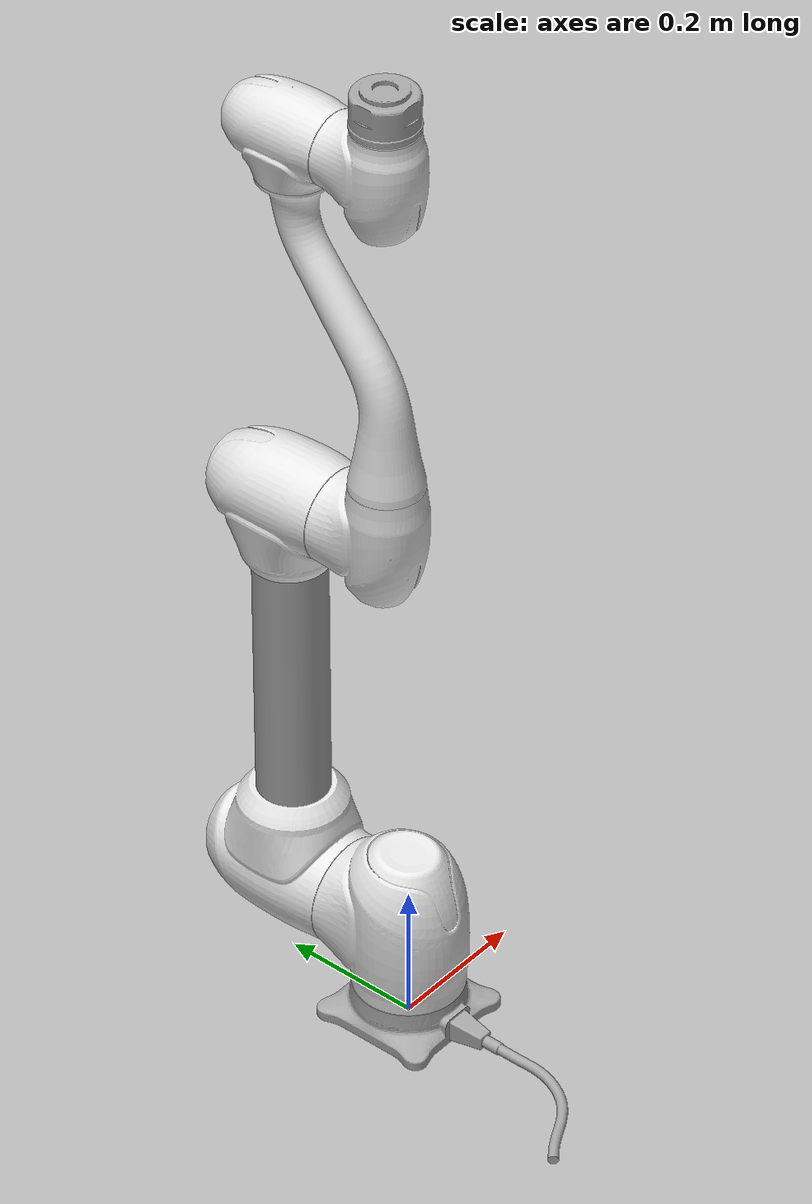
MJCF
<mujoco model="m1013">

  <asset>
    <mesh name="MF1013_0_0" file="m1013/assets/MF1013_0_0.stl" scale="0.001 0.001 0.001"/>
    <mesh name="MF1013_1_0" file="m1013/assets/MF1013_1_0.stl" scale="0.001 0.001 0.001"/>
    <mesh name="MF1013_2_0" file="m1013/assets/MF1013_2_0.stl" scale="0.001 0.001 0.001"/>
    <mesh name="MF1013_2_1" file="m1013/assets/MF1013_2_1.stl" scale="0.001 0.001 0.001"/>
    <mesh name="MF1013_2_2" file="m1013/assets/MF1013_2_2.stl" scale="0.001 0.001 0.001"/>
    <mesh name="MF1013_3_0" file="m1013/assets/MF1013_3_0.stl" scale="0.001 0.001 0.001"/>
    <mesh name="MF1013_4_0" file="m1013/assets/MF1013_4_0.stl" scale="0.001 0.001 0.001"/>
    <mesh name="MF1013_4_1" file="m1013/assets/MF1013_4_1.stl" scale="0.001 0.001 0.001"/>
    <mesh name="MF1013_5_0" file="m1013/assets/MF1013_5_0.stl" scale="0.001 0.001 0.001"/>
    <mesh name="MF1013_6_0" file="m1013/assets/MF1013_6_0.stl" scale="0.001 0.001 0.001"/>

    <material name="white" rgba="0.9 0.9 0.9 1"/>
    <material name="metal" rgba="0.65 0.65 0.65 1"/>
  </asset>

  <worldbody>
    <geom type="mesh" contype="1" conaffinity="1" group="1" density="0" mesh="MF1013_0_0" material="metal"/>
    <body name="link_1" pos="0 0 0.1525">
      <inertial pos="0.000119 0.0428 -0.006383" quat="0.464342 0.521165 -0.533586 0.477557" mass="7.8" diaginertia="0.0472838 0.0450586 0.0294526"/>
      <joint name="joint_1" pos="0 0 0" axis="0 0 1" range="-6.2832 6.2832" actuatorfrcrange="-346 346" damping="1200" frictionloss="1"/>
      <geom type="mesh" contype="1" conaffinity="1" group="1" density="0" mesh="MF1013_1_0" material="white"/>
      <body name="link_2" pos="0 0.0345 0" quat="0.499898 -0.500102 -0.5 -0.5">
        <inertial pos="0.25973 -5.3e-05 0.15782" quat="0.0181111 0.703821 0.0182764 0.709911" mass="10.83" diaginertia="0.850272 0.849428 0.0375257"/>
        <joint name="joint_2" pos="0 0 0" axis="0 0 1" range="-6.2832 6.2832" actuatorfrcrange="-346 346" damping="1200" frictionloss="1"/>
        <geom type="mesh" contype="1" conaffinity="1" group="1" density="0" mesh="MF1013_2_0" material="white"/>
        <geom type="mesh" contype="1" conaffinity="1" group="1" density="0" mesh="MF1013_2_1" material="metal"/>
        <geom type="mesh" contype="1" conaffinity="1" group="1" density="0" mesh="MF1013_2_2" material="white"/>
        <body name="link_3" pos="0.62 0 0" quat="0.707035 0 0 0.707179">
          <inertial pos="-1.5e-05 -0.006702 0.044608" quat="0.713939 -0.0462748 0.0455669 0.69719" mass="3.68" diaginertia="0.0191021 0.0187478 0.0113721"/>
          <joint name="joint_3" pos="0 0 0" axis="0 0 1" range="-2.7925 2.7925" actuatorfrcrange="-300 300" damping="1200" frictionloss="1"/>
          <geom type="mesh" contype="1" conaffinity="1" group="1" density="0" mesh="MF1013_3_0" material="white"/>
          <body name="link_4" pos="0 -0.559 0" quat="0.707035 0.707179 0 0">
            <inertial pos="7.1e-05 0.091879 -0.18252" quat="0.987197 -0.159369 -0.000923443 -0.0064664" mass="3.82" diaginertia="0.19063 0.190249 0.0128173"/>
            <joint name="joint_4" pos="0 0 0" axis="0 0 1" range="-6.2832 6.2832" actuatorfrcrange="-300 300" damping="1200" frictionloss="1"/>
            <geom type="mesh" contype="1" conaffinity="1" group="1" density="0" mesh="MF1013_4_0" material="white"/>
            <geom type="mesh" contype="1" conaffinity="1" group="1" density="0" mesh="MF1013_4_1" material="white"/>
            <body name="link_5" quat="0.707035 -0.707179 0 0">
              <inertial pos="-0.000273 0.003651 0.032088" quat="0.996984 0.0775632 0.000422658 0.00257843" mass="2.82" diaginertia="0.0155831 0.0115855 0.00880048"/>
              <joint name="joint_5" pos="0 0 0" axis="0 0 1" range="-6.2832 6.2832" actuatorfrcrange="-200 200" damping="800" frictionloss="1"/>
              <geom type="mesh" contype="1" conaffinity="1" group="1" density="0" mesh="MF1013_5_0" material="white"/>
              <body name="link_6" pos="0 -0.121 0" quat="0.707035 0.707179 0 0">
                <inertial pos="-0.000292 7e-06 -0.0539" quat="0.0099287 0.708965 0.0073912 0.705135" mass="1.16" diaginertia="0.00612644 0.00595181 0.00482815"/>
                <joint name="joint_6" pos="0 0 0" axis="0 0 1" range="-6.2832 6.2832" actuatorfrcrange="-100 100" damping="300" frictionloss="1"/>
                <geom type="mesh" contype="1" conaffinity="1" group="1" density="0" mesh="MF1013_6_0" material="metal"/>
              </body>
            </body>
          </body>
        </body>
      </body>
    </body>
  </worldbody>

  <actuator>
    <position joint="joint_1" kp="10" kv="1" ctrlrange="-6.2832 6.2832"/>
    <position joint="joint_2" kp="10" kv="1" ctrlrange="-6.2832 6.2832"/>
    <position joint="joint_3" kp="10" kv="1" ctrlrange="-2.7925 2.7925"/>
    <position joint="joint_4" kp="10" kv="1" ctrlrange="-6.2832 6.2832"/>
    <position joint="joint_5" kp="10" kv="1" ctrlrange="-6.2832 6.2832"/>
    <position joint="joint_6" kp="10" kv="1" ctrlrange="-6.2832 6.2832"/>
  </actuator>
</mujoco>
